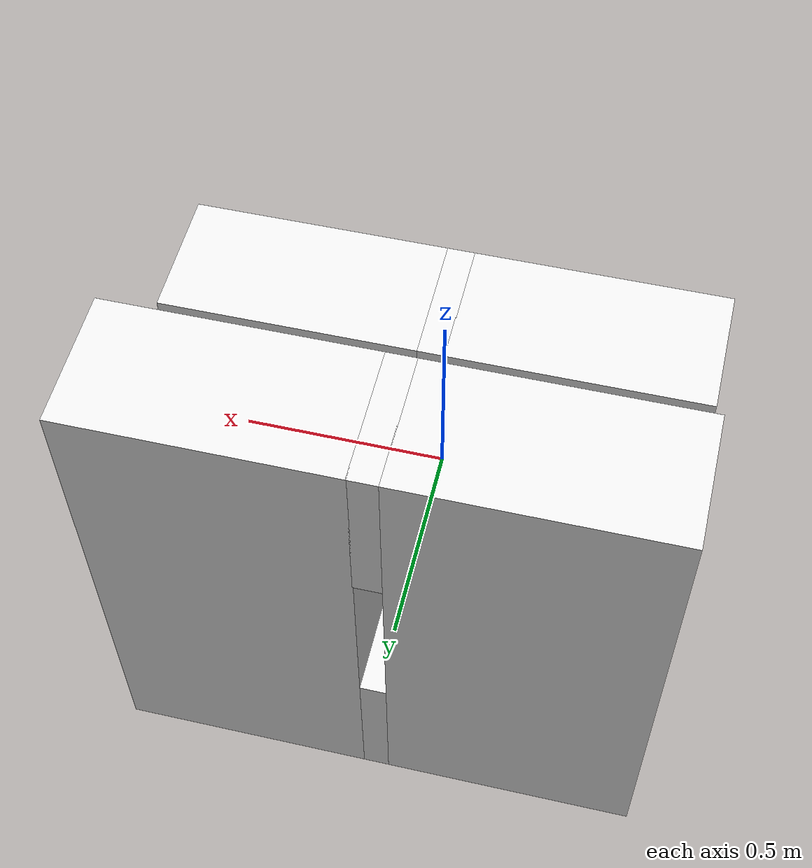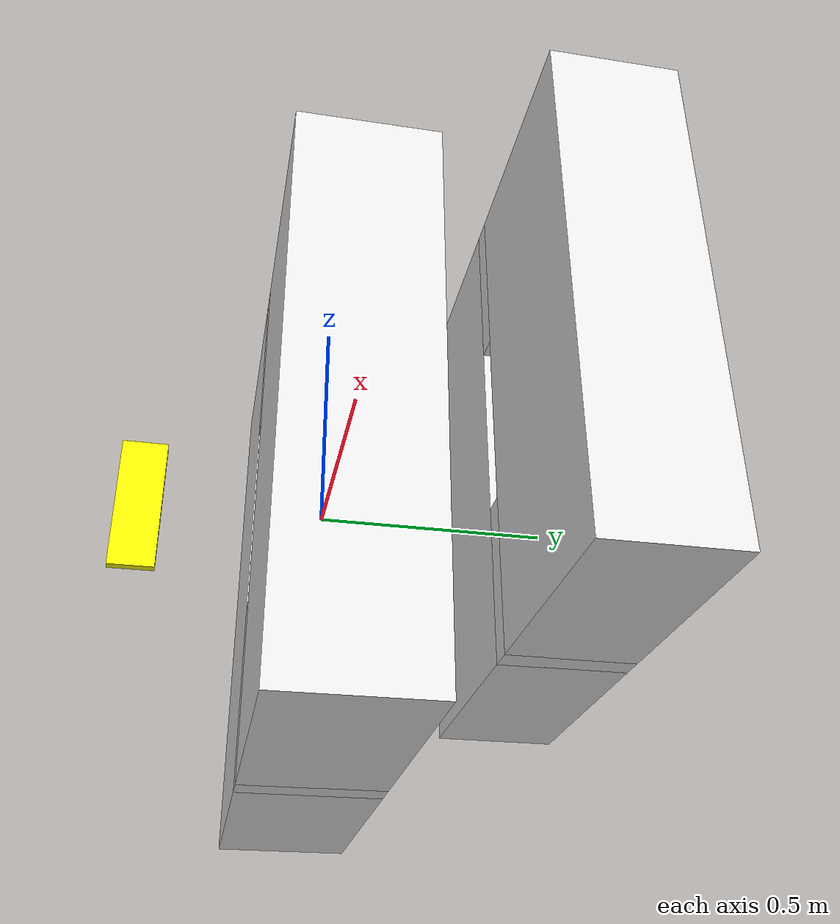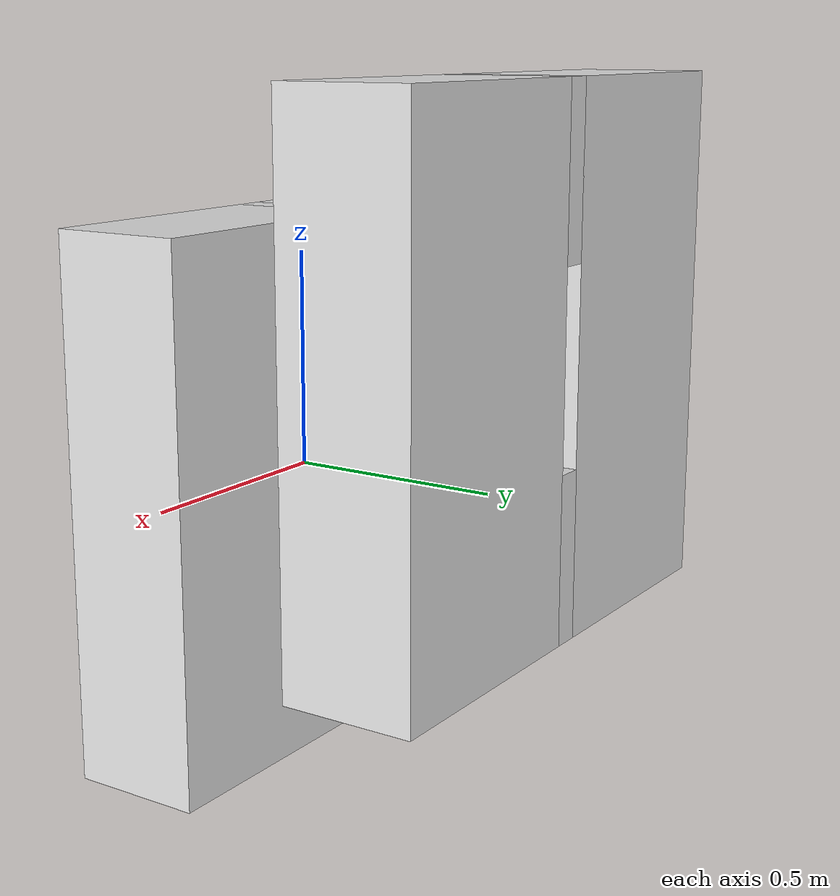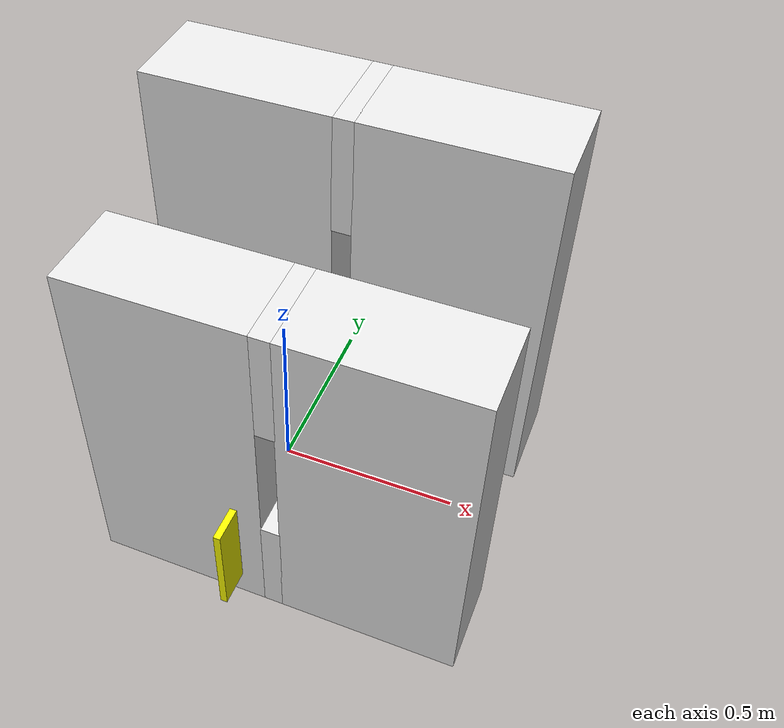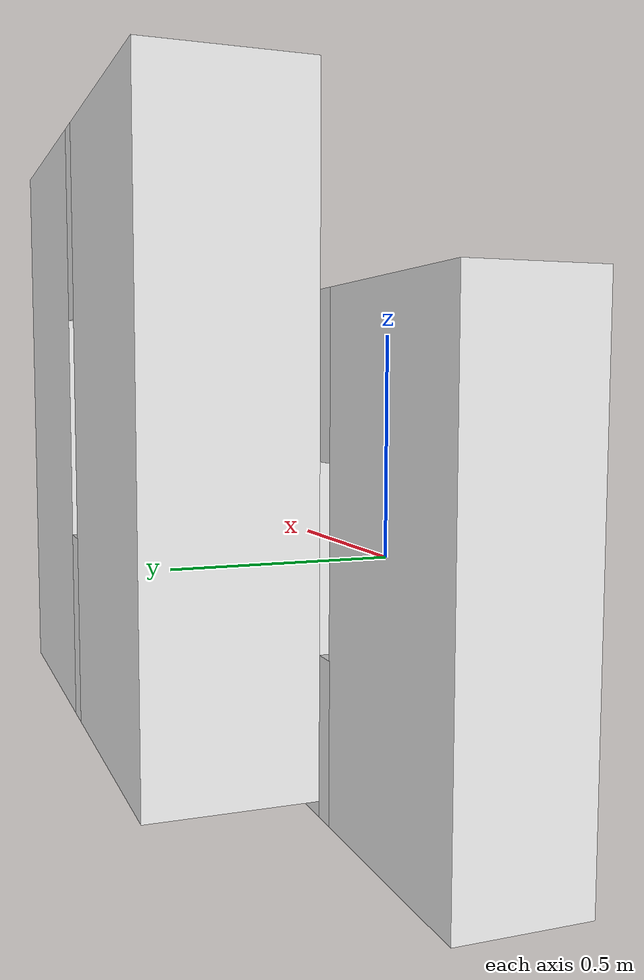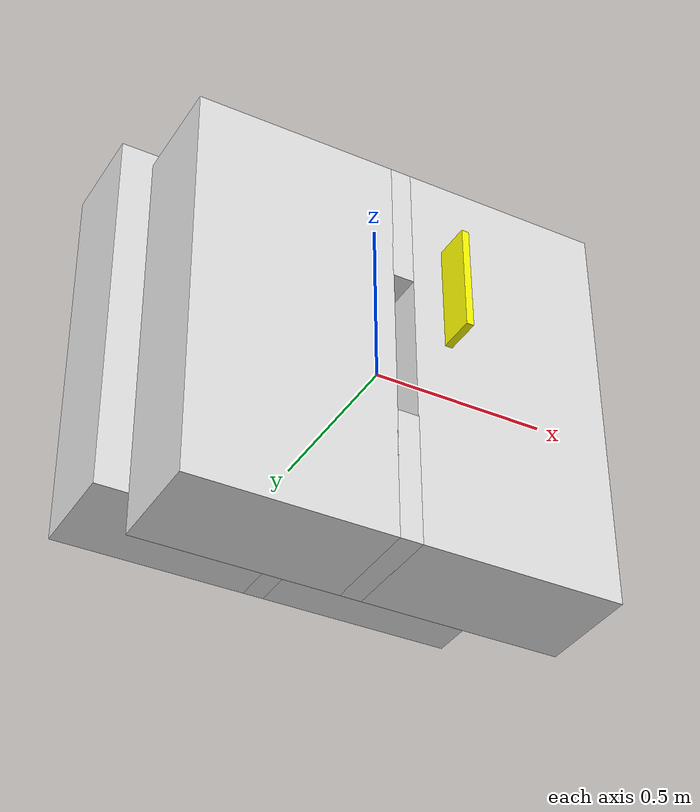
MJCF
<mujoco model="block_insertion">

    <compiler inertiafromgeom="true" angle="radian" coordinate="local" />
    <option timestep="0.01" gravity="0 0 0" iterations="20" integrator="Euler" />
    <default>
        <joint armature="0.1" damping="1" limited="false" />
armature="0" damping="0"     </default>

    <worldbody>

        <body name="block" pos="0 -0.4 0">
            <geom name="block_geom" rgba="1 1 0 1" type="box" size="0.01 0.05 0.15" contype="1" conaffinity="1" />
            <joint name="block_y" type="slide" pos="0 0 0" axis="0 1 0" limited="true" range="0 1.3" />
            <joint name="block_z" type="slide" pos="0 0 0" axis="0 0 1" limited="true" range="-0.25 0.35" />
        </body>

        <body name="block_target" pos="0 -0.4 0">
            <geom name="block_target_geom" rgba="0 1 0 1" type="box" size="0.01 0.05 0.15" contype="0" conaffinity="0" />
            <joint name="block_target_y" armature="0" damping="0" type="slide" pos="0 0 0" axis="0 1 0" limited="true" range="0 1.3" />
            <joint name="block_target_z" armature="0" damping="0" type="slide" pos="0 0 0" axis="0 0 1" limited="true" range="-0.25 0.35" />
        </body>

        <body name="w1_1" pos="0.32 0 0">
            <geom name="w1_1" rgba="0.9 0.9 0.9 1" type="box" size="0.29 0.15 0.6" contype="1" conaffinity="1" />
        </body>

        <body name="w1_2" pos="-0.32 0 0">
            <geom name="w1_2" rgba="0.9 0.9 0.9 1" type="box" size="0.29 0.15 0.6" contype="1" conaffinity="1" />
        </body>

        <body name="w1_3" pos="0.0 0 0.41">
            <geom name="w1_3" rgba="0.9 0.9 0.9 1" type="box" size="0.032 0.15 0.19" contype="1" conaffinity="1" />
        </body>

        <body name="w1_4" pos="0.0 0 -0.41">
            <geom name="w1_4" rgba="0.9 0.9 0.9 1" type="box" size="0.032 0.15 0.19" contype="1" conaffinity="1" />
        </body>

        <body name="w2_1" pos="0.32 0.55 0.3">
            <geom name="w2_1" rgba="0.9 0.9 0.9 1" type="box" size="0.29 0.15 0.6" contype="1" conaffinity="1" />
        </body>

        <body name="w2_2" pos="-0.32 0.55 0.3">
            <geom name="w2_2" rgba="0.9 0.9 0.9 1" type="box" size="0.29 0.15 0.6" contype="1" conaffinity="1" />
        </body>

        <body name="w2_3" pos="0.0 0.55 0.71">
            <geom name="w2_3" rgba="0.9 0.9 0.9 1" type="box" size="0.032 0.15 0.19" contype="1" conaffinity="1" />
        </body>

        <body name="w2_4" pos="0.0 0.55 -0.11">
            <geom name="w2_4" rgba="0.9 0.9 0.9 1" type="box" size="0.032 0.15 0.19" contype="1" conaffinity="1" />
        </body>

    </worldbody>

    <actuator>
        <motor joint="block_y" ctrlrange="-2.0 2.0" ctrllimited="true" />
        <motor joint="block_z" ctrlrange="-2.0 2.0" ctrllimited="true" />
    </actuator>

</mujoco>
